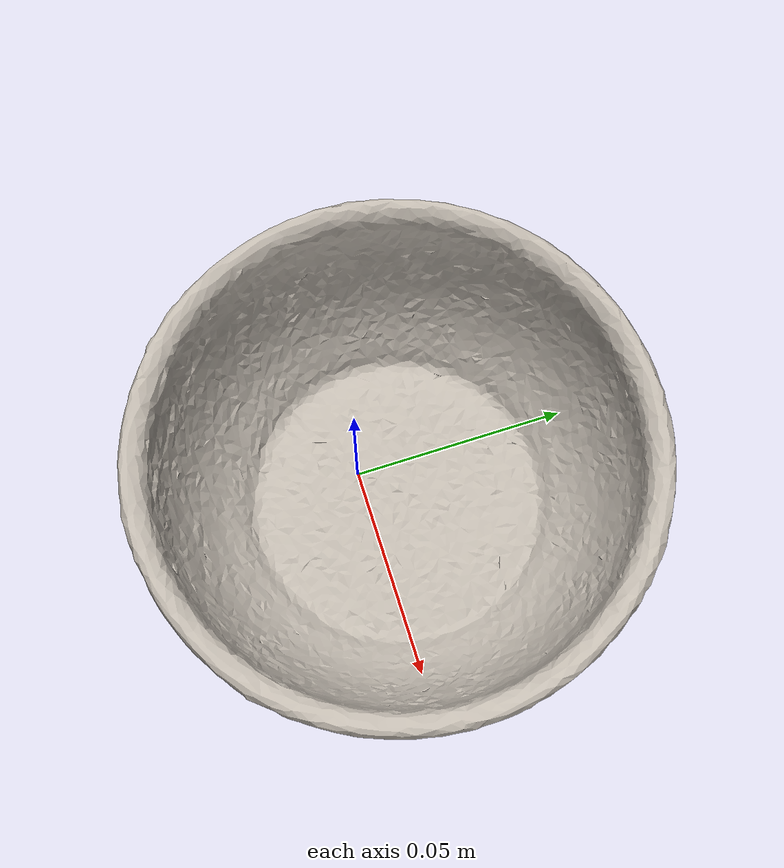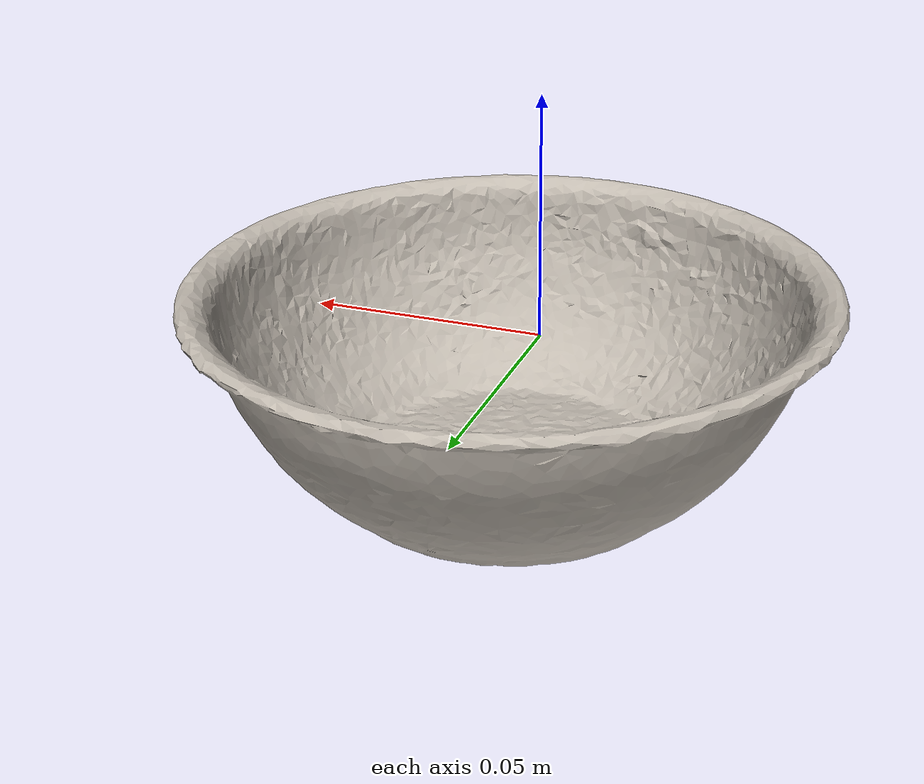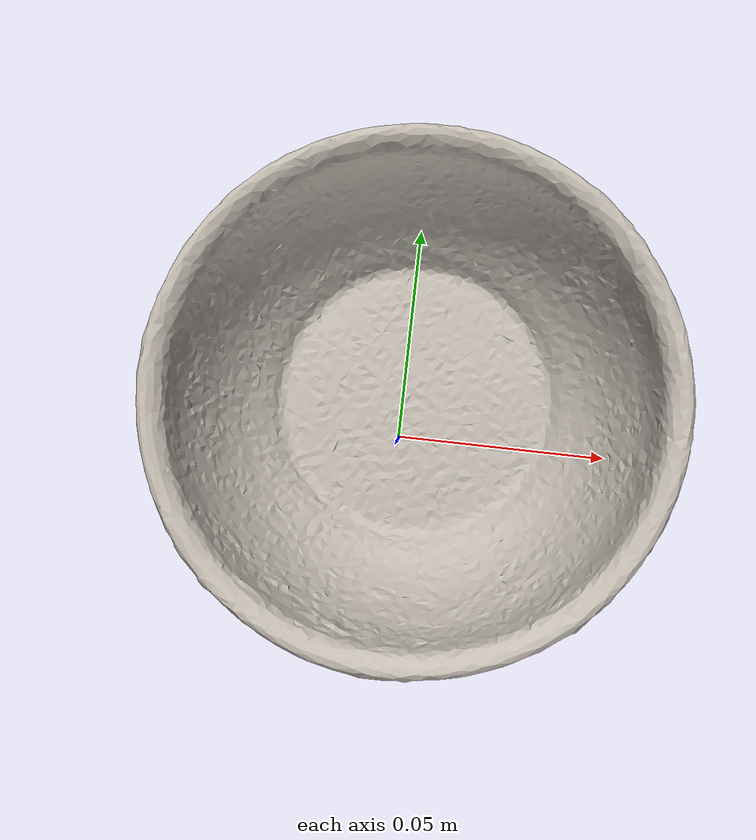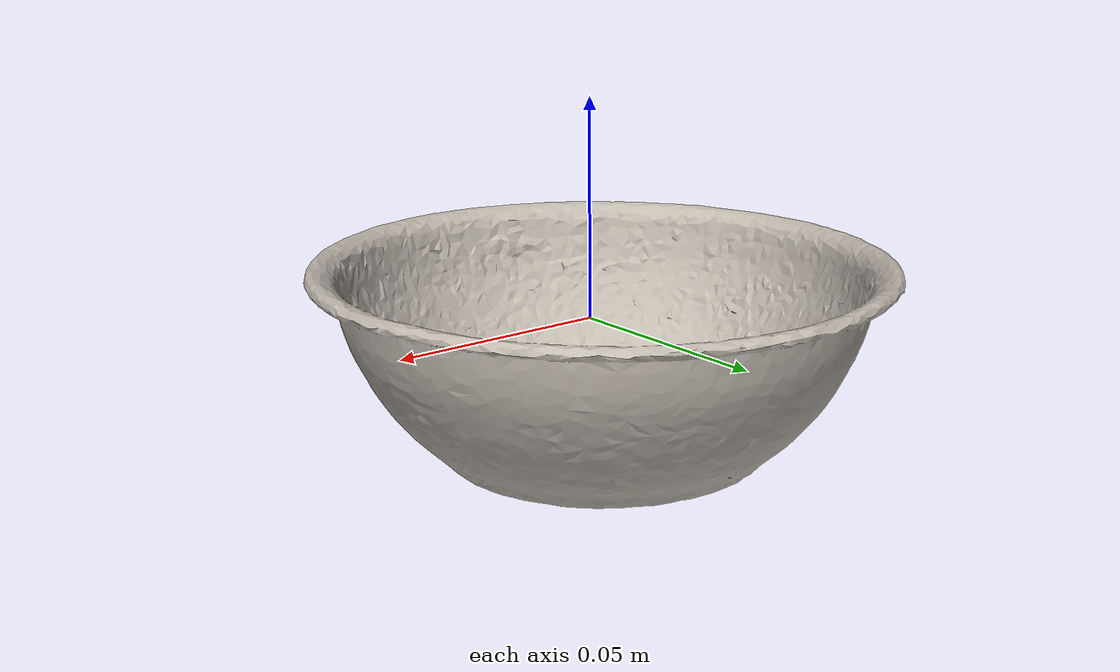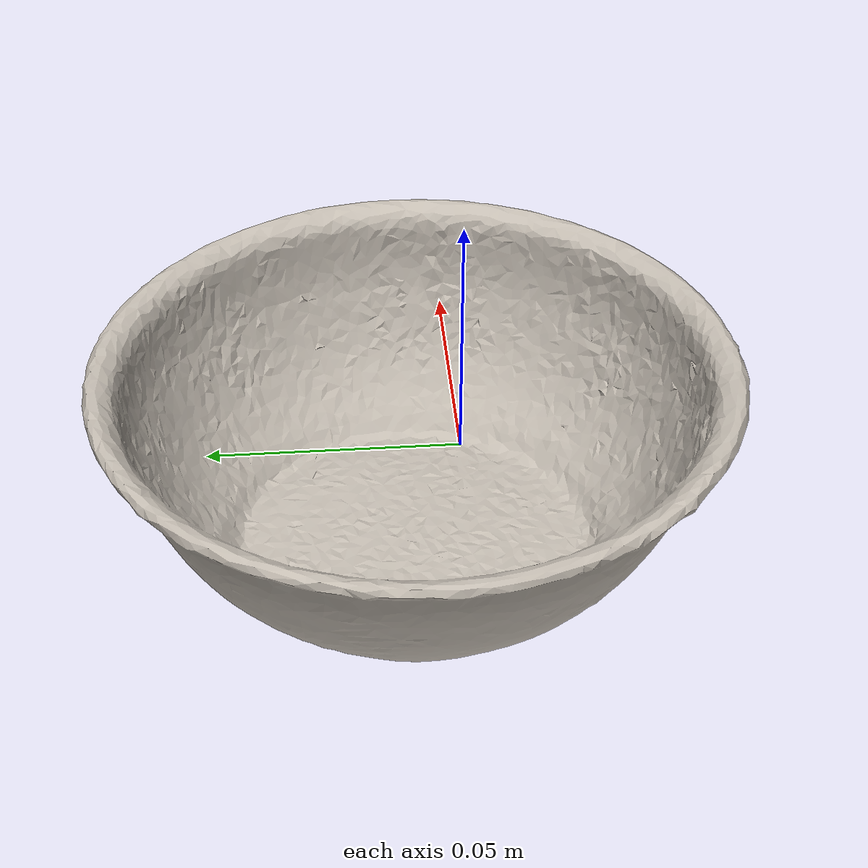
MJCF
<mujoco model="bread">
  <asset>
    <mesh file="nontextured.stl" name="obj_mesh" scale="0.8 0.8 0.8"/>
    <texture file="../../../../../textures/bread.png" type="2d" name="tex-bread" />
    <material name="bread" reflectance="0.7" texrepeat="15 15" texture="tex-bread" texuniform="true"/>
  </asset>
  <worldbody>
    <body>
      <body name="collision">
        <geom pos="0.014839499999999999 0.043689000000000006 -0.0269745" mesh="obj_mesh" type="mesh" solimp="0.998 0.998 0.001" solref="0.001 1" density="50" friction="0.95 0.3 0.1"  material="bread" group="1" condim="4"/>
      </body>
      <body name="visual">
        <geom pos="0.014839499999999999 0.043689000000000006 -0.0269745" mesh="obj_mesh" type="mesh" material="bread"  conaffinity="0" contype="0"  group="0" mass="0.0001"/>
        <geom pos="0.014839499999999999 0.043689000000000006 -0.0269745" mesh="obj_mesh" type="mesh" material="bread"  conaffinity="0" contype="0"  group="1" mass="0.0001"/>
      </body>
      <site rgba="0 0 0 0" size="0.005" pos="0 0 -0.0275045" name="bottom_site"/>
      <site rgba="0 0 0 0" size="0.005" pos="0 0 0.0275045" name="top_site"/>
      <site rgba="0 0 0 0" size="0.005" pos="0.08073150000000001 0.080582 0.0275045" name="horizontal_radius_site"/>
    </body>
  </worldbody>
</mujoco>
